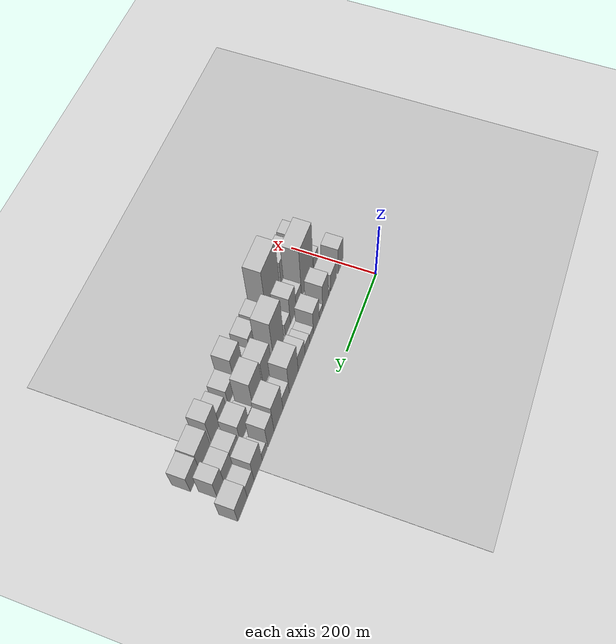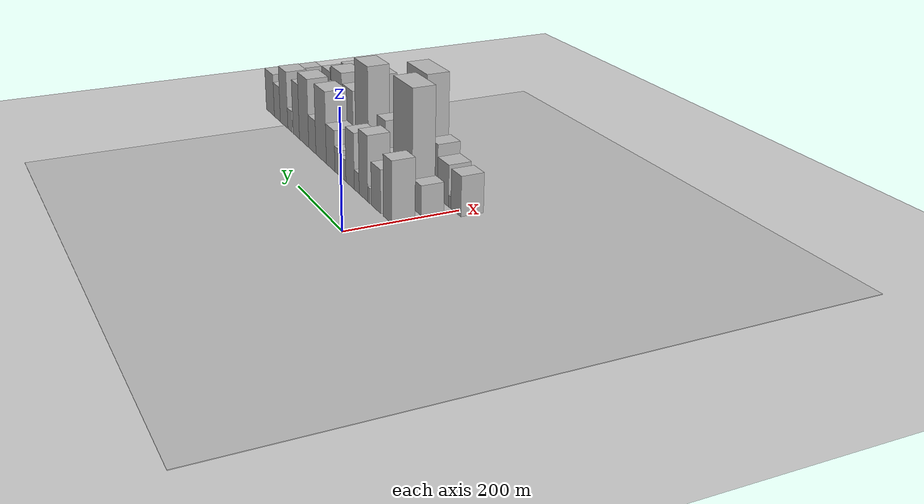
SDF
<sdf version="1.6">
 <world name="default">
  <include><name>ground_plane_1</name><uri>model://HANNAS_ground_plane</uri></include>
  <include>
   <name>ground_plane_2</name>
   <uri>model://HANNAS_ground_plane</uri>
   <pose>100 0 0  0 0 0</pose>
  </include>
  <model name="building_20">
   <static>1</static>
   <pose>100.0000 11.2909 0 0.000000 0.000000 0.000000</pose>
   <link name="link">
    <pose>0 0 52.50 0 0 0</pose>
    <collision name="collision"><geometry><box><size>40.0000 33.2602 105.0000</size></box></geometry></collision>
    <visual name="visual">
     <cast_shadows>0</cast_shadows>
     <geometry><box><size>40.0000 33.2602 105.0000</size></box></geometry>
     <material>
      <script>
       <uri>model://HANNAS_wall/materials/scripts</uri>
       <uri>model://HANNAS_wall/materials/textures</uri>
       <name>vrc/HANNAS_wall</name>
      </script>
     </material>
    </visual>
   </link>
  </model>
  <model name="building_21">
   <static>1</static>
   <pose>100.0000 57.2294 0 0.000000 0.000000 0.000000</pose>
   <link name="link">
    <pose>0 0 37.50 0 0 0</pose>
    <collision name="collision"><geometry><box><size>40.0000 38.6168 75.0000</size></box></geometry></collision>
    <visual name="visual">
     <cast_shadows>0</cast_shadows>
     <geometry><box><size>40.0000 38.6168 75.0000</size></box></geometry>
     <material>
      <script>
       <uri>model://HANNAS_wall/materials/scripts</uri>
       <uri>model://HANNAS_wall/materials/textures</uri>
       <name>vrc/HANNAS_wall</name>
      </script>
     </material>
    </visual>
   </link>
  </model>
  <model name="building_22">
   <static>1</static>
   <pose>100.0000 85.9400 0 0.000000 0.000000 0.000000</pose>
   <link name="link">
    <pose>0 0 13.50 0 0 0</pose>
    <collision name="collision"><geometry><box><size>40.0000 10.8043 27.0000</size></box></geometry></collision>
    <visual name="visual">
     <cast_shadows>0</cast_shadows>
     <geometry><box><size>40.0000 10.8043 27.0000</size></box></geometry>
     <material>
      <script>
       <uri>model://HANNAS_wall/materials/scripts</uri>
       <uri>model://HANNAS_wall/materials/textures</uri>
       <name>vrc/HANNAS_wall</name>
      </script>
     </material>
    </visual>
   </link>
  </model>
  <model name="building_23">
   <static>1</static>
   <pose>100.0000 109.5567 0 0.000000 0.000000 0.000000</pose>
   <link name="link">
    <pose>0 0 57.00 0 0 0</pose>
    <collision name="collision"><geometry><box><size>40.0000 36.4291 114.0000</size></box></geometry></collision>
    <visual name="visual">
     <cast_shadows>0</cast_shadows>
     <geometry><box><size>40.0000 36.4291 114.0000</size></box></geometry>
     <material>
      <script>
       <uri>model://HANNAS_wall/materials/scripts</uri>
       <uri>model://HANNAS_wall/materials/textures</uri>
       <name>vrc/HANNAS_wall</name>
      </script>
     </material>
    </visual>
   </link>
  </model>
  <model name="building_24">
   <static>1</static>
   <pose>100.0000 138.3412 0 0.000000 0.000000 0.000000</pose>
   <link name="link">
    <pose>0 0 18.00 0 0 0</pose>
    <collision name="collision"><geometry><box><size>40.0000 21.1399 36.0000</size></box></geometry></collision>
    <visual name="visual">
     <cast_shadows>0</cast_shadows>
     <geometry><box><size>40.0000 21.1399 36.0000</size></box></geometry>
     <material>
      <script>
       <uri>model://HANNAS_wall/materials/scripts</uri>
       <uri>model://HANNAS_wall/materials/textures</uri>
       <name>vrc/HANNAS_wall</name>
      </script>
     </material>
    </visual>
   </link>
  </model>
  <model name="building_25">
   <static>1</static>
   <pose>100.0000 167.5153 0 0.000000 0.000000 0.000000</pose>
   <link name="link">
    <pose>0 0 49.50 0 0 0</pose>
    <collision name="collision"><geometry><box><size>40.0000 37.2082 99.0000</size></box></geometry></collision>
    <visual name="visual">
     <cast_shadows>0</cast_shadows>
     <geometry><box><size>40.0000 37.2082 99.0000</size></box></geometry>
     <material>
      <script>
       <uri>model://HANNAS_wall/materials/scripts</uri>
       <uri>model://HANNAS_wall/materials/textures</uri>
       <name>vrc/HANNAS_wall</name>
      </script>
     </material>
    </visual>
   </link>
  </model>
  <model name="building_26">
   <static>1</static>
   <pose>100.0000 197.5822 0 0.000000 0.000000 0.000000</pose>
   <link name="link">
    <pose>0 0 19.50 0 0 0</pose>
    <collision name="collision"><geometry><box><size>40.0000 22.9257 39.0000</size></box></geometry></collision>
    <visual name="visual">
     <cast_shadows>0</cast_shadows>
     <geometry><box><size>40.0000 22.9257 39.0000</size></box></geometry>
     <material>
      <script>
       <uri>model://HANNAS_wall/materials/scripts</uri>
       <uri>model://HANNAS_wall/materials/textures</uri>
       <name>vrc/HANNAS_wall</name>
      </script>
     </material>
    </visual>
   </link>
  </model>
  <model name="building_27">
   <static>1</static>
   <pose>100.0000 223.0981 0 0.000000 0.000000 0.000000</pose>
   <link name="link">
    <pose>0 0 24.00 0 0 0</pose>
    <collision name="collision"><geometry><box><size>40.0000 28.1060 48.0000</size></box></geometry></collision>
    <visual name="visual">
     <cast_shadows>0</cast_shadows>
     <geometry><box><size>40.0000 28.1060 48.0000</size></box></geometry>
     <material>
      <script>
       <uri>model://HANNAS_wall/materials/scripts</uri>
       <uri>model://HANNAS_wall/materials/textures</uri>
       <name>vrc/HANNAS_wall</name>
      </script>
     </material>
    </visual>
   </link>
  </model>
  <model name="building_28">
   <static>1</static>
   <pose>100.0000 257.6946 0 0.000000 0.000000 0.000000</pose>
   <link name="link">
    <pose>0 0 37.50 0 0 0</pose>
    <collision name="collision"><geometry><box><size>40.0000 41.0869 75.0000</size></box></geometry></collision>
    <visual name="visual">
     <cast_shadows>0</cast_shadows>
     <geometry><box><size>40.0000 41.0869 75.0000</size></box></geometry>
     <material>
      <script>
       <uri>model://HANNAS_wall/materials/scripts</uri>
       <uri>model://HANNAS_wall/materials/textures</uri>
       <name>vrc/HANNAS_wall</name>
      </script>
     </material>
    </visual>
   </link>
  </model>
  <model name="building_29">
   <static>1</static>
   <pose>100.0000 304.1886 0 0.000000 0.000000 0.000000</pose>
   <link name="link">
    <pose>0 0 66.00 0 0 0</pose>
    <collision name="collision"><geometry><box><size>40.0000 51.9012 132.0000</size></box></geometry></collision>
    <visual name="visual">
     <cast_shadows>0</cast_shadows>
     <geometry><box><size>40.0000 51.9012 132.0000</size></box></geometry>
     <material>
      <script>
       <uri>model://HANNAS_wall/materials/scripts</uri>
       <uri>model://HANNAS_wall/materials/textures</uri>
       <name>vrc/HANNAS_wall</name>
      </script>
     </material>
    </visual>
   </link>
  </model>
  <model name="building_30">
   <static>1</static>
   <pose>100.0000 348.5221 0 0.000000 0.000000 0.000000</pose>
   <link name="link">
    <pose>0 0 31.50 0 0 0</pose>
    <collision name="collision"><geometry><box><size>40.0000 36.7659 63.0000</size></box></geometry></collision>
    <visual name="visual">
     <cast_shadows>0</cast_shadows>
     <geometry><box><size>40.0000 36.7659 63.0000</size></box></geometry>
     <material>
      <script>
       <uri>model://HANNAS_wall/materials/scripts</uri>
       <uri>model://HANNAS_wall/materials/textures</uri>
       <name>vrc/HANNAS_wall</name>
      </script>
     </material>
    </visual>
   </link>
  </model>
  <model name="building_31">
   <static>1</static>
   <pose>100.0000 391.8093 0 0.000000 0.000000 0.000000</pose>
   <link name="link">
    <pose>0 0 64.50 0 0 0</pose>
    <collision name="collision"><geometry><box><size>40.0000 49.8083 129.0000</size></box></geometry></collision>
    <visual name="visual">
     <cast_shadows>0</cast_shadows>
     <geometry><box><size>40.0000 49.8083 129.0000</size></box></geometry>
     <material>
      <script>
       <uri>model://HANNAS_wall/materials/scripts</uri>
       <uri>model://HANNAS_wall/materials/textures</uri>
       <name>vrc/HANNAS_wall</name>
      </script>
     </material>
    </visual>
   </link>
  </model>
  <model name="building_32">
   <static>1</static>
   <pose>100.0000 434.0224 0 0.000000 0.000000 0.000000</pose>
   <link name="link">
    <pose>0 0 52.50 0 0 0</pose>
    <collision name="collision"><geometry><box><size>40.0000 34.6179 105.0000</size></box></geometry></collision>
    <visual name="visual">
     <cast_shadows>0</cast_shadows>
     <geometry><box><size>40.0000 34.6179 105.0000</size></box></geometry>
     <material>
      <script>
       <uri>model://HANNAS_wall/materials/scripts</uri>
       <uri>model://HANNAS_wall/materials/textures</uri>
       <name>vrc/HANNAS_wall</name>
      </script>
     </material>
    </visual>
   </link>
  </model>
  <model name="building_33">
   <static>1</static>
   <pose>100.0000 468.6477 0 0.000000 0.000000 0.000000</pose>
   <link name="link">
    <pose>0 0 21.00 0 0 0</pose>
    <collision name="collision"><geometry><box><size>40.0000 24.6328 42.0000</size></box></geometry></collision>
    <visual name="visual">
     <cast_shadows>0</cast_shadows>
     <geometry><box><size>40.0000 24.6328 42.0000</size></box></geometry>
     <material>
      <script>
       <uri>model://HANNAS_wall/materials/scripts</uri>
       <uri>model://HANNAS_wall/materials/textures</uri>
       <name>vrc/HANNAS_wall</name>
      </script>
     </material>
    </visual>
   </link>
  </model>
  <model name="building_34">
   <static>1</static>
   <pose>100.0000 502.6056 0 0.000000 0.000000 0.000000</pose>
   <link name="link">
    <pose>0 0 55.50 0 0 0</pose>
    <collision name="collision"><geometry><box><size>40.0000 43.2830 111.0000</size></box></geometry></collision>
    <visual name="visual">
     <cast_shadows>0</cast_shadows>
     <geometry><box><size>40.0000 43.2830 111.0000</size></box></geometry>
     <material>
      <script>
       <uri>model://HANNAS_wall/materials/scripts</uri>
       <uri>model://HANNAS_wall/materials/textures</uri>
       <name>vrc/HANNAS_wall</name>
      </script>
     </material>
    </visual>
   </link>
  </model>
  <model name="building_35">
   <static>1</static>
   <pose>100.0000 542.0786 0 0.000000 0.000000 0.000000</pose>
   <link name="link">
    <pose>0 0 34.50 0 0 0</pose>
    <collision name="collision"><geometry><box><size>40.0000 35.6630 69.0000</size></box></geometry></collision>
    <visual name="visual">
     <cast_shadows>0</cast_shadows>
     <geometry><box><size>40.0000 35.6630 69.0000</size></box></geometry>
     <material>
      <script>
       <uri>model://HANNAS_wall/materials/scripts</uri>
       <uri>model://HANNAS_wall/materials/textures</uri>
       <name>vrc/HANNAS_wall</name>
      </script>
     </material>
    </visual>
   </link>
  </model>
  <model name="building_36">
   <static>1</static>
   <pose>100.0000 584.0762 0 0.000000 0.000000 0.000000</pose>
   <link name="link">
    <pose>0 0 42.00 0 0 0</pose>
    <collision name="collision"><geometry><box><size>40.0000 48.3321 84.0000</size></box></geometry></collision>
    <visual name="visual">
     <cast_shadows>0</cast_shadows>
     <geometry><box><size>40.0000 48.3321 84.0000</size></box></geometry>
     <material>
      <script>
       <uri>model://HANNAS_wall/materials/scripts</uri>
       <uri>model://HANNAS_wall/materials/textures</uri>
       <name>vrc/HANNAS_wall</name>
      </script>
     </material>
    </visual>
   </link>
  </model>
  <model name="building_53">
   <static>1</static>
   <pose>155.0000 19.9954 0 0.000000 0.000000 0.000000</pose>
   <link name="link">
    <pose>0 0 25.50 0 0 0</pose>
    <collision name="collision"><geometry><box><size>40.0000 30.4547 51.0000</size></box></geometry></collision>
    <visual name="visual">
     <cast_shadows>0</cast_shadows>
     <geometry><box><size>40.0000 30.4547 51.0000</size></box></geometry>
     <material>
      <script>
       <uri>model://HANNAS_wall/materials/scripts</uri>
       <uri>model://HANNAS_wall/materials/textures</uri>
       <name>vrc/HANNAS_wall</name>
      </script>
     </material>
    </visual>
   </link>
  </model>
  <model name="building_54">
   <static>1</static>
   <pose>155.0000 74.8193 0 0.000000 0.000000 0.000000</pose>
   <link name="link">
    <pose>0 0 100.50 0 0 0</pose>
    <collision name="collision"><geometry><box><size>40.0000 73.1931 201.0000</size></box></geometry></collision>
    <visual name="visual">
     <cast_shadows>0</cast_shadows>
     <geometry><box><size>40.0000 73.1931 201.0000</size></box></geometry>
     <material>
      <script>
       <uri>model://HANNAS_wall/materials/scripts</uri>
       <uri>model://HANNAS_wall/materials/textures</uri>
       <name>vrc/HANNAS_wall</name>
      </script>
     </material>
    </visual>
   </link>
  </model>
  <model name="building_55">
   <static>1</static>
   <pose>155.0000 127.9329 0 0.000000 0.000000 0.000000</pose>
   <link name="link">
    <pose>0 0 33.00 0 0 0</pose>
    <collision name="collision"><geometry><box><size>40.0000 33.0342 66.0000</size></box></geometry></collision>
    <visual name="visual">
     <cast_shadows>0</cast_shadows>
     <geometry><box><size>40.0000 33.0342 66.0000</size></box></geometry>
     <material>
      <script>
       <uri>model://HANNAS_wall/materials/scripts</uri>
       <uri>model://HANNAS_wall/materials/textures</uri>
       <name>vrc/HANNAS_wall</name>
      </script>
     </material>
    </visual>
   </link>
  </model>
  <model name="building_56">
   <static>1</static>
   <pose>155.0000 161.9922 0 0.000000 0.000000 0.000000</pose>
   <link name="link">
    <pose>0 0 57.00 0 0 0</pose>
    <collision name="collision"><geometry><box><size>40.0000 35.0843 114.0000</size></box></geometry></collision>
    <visual name="visual">
     <cast_shadows>0</cast_shadows>
     <geometry><box><size>40.0000 35.0843 114.0000</size></box></geometry>
     <material>
      <script>
       <uri>model://HANNAS_wall/materials/scripts</uri>
       <uri>model://HANNAS_wall/materials/textures</uri>
       <name>vrc/HANNAS_wall</name>
      </script>
     </material>
    </visual>
   </link>
  </model>
  <model name="building_57">
   <static>1</static>
   <pose>155.0000 195.0252 0 0.000000 0.000000 0.000000</pose>
   <link name="link">
    <pose>0 0 27.00 0 0 0</pose>
    <collision name="collision"><geometry><box><size>40.0000 30.9818 54.0000</size></box></geometry></collision>
    <visual name="visual">
     <cast_shadows>0</cast_shadows>
     <geometry><box><size>40.0000 30.9818 54.0000</size></box></geometry>
     <material>
      <script>
       <uri>model://HANNAS_wall/materials/scripts</uri>
       <uri>model://HANNAS_wall/materials/textures</uri>
       <name>vrc/HANNAS_wall</name>
      </script>
     </material>
    </visual>
   </link>
  </model>
  <model name="building_58">
   <static>1</static>
   <pose>155.0000 247.5119 0 0.000000 0.000000 0.000000</pose>
   <link name="link">
    <pose>0 0 93.00 0 0 0</pose>
    <collision name="collision"><geometry><box><size>40.0000 57.9915 186.0000</size></box></geometry></collision>
    <visual name="visual">
     <cast_shadows>0</cast_shadows>
     <geometry><box><size>40.0000 57.9915 186.0000</size></box></geometry>
     <material>
      <script>
       <uri>model://HANNAS_wall/materials/scripts</uri>
       <uri>model://HANNAS_wall/materials/textures</uri>
       <name>vrc/HANNAS_wall</name>
      </script>
     </material>
    </visual>
   </link>
  </model>
  <model name="building_59">
   <static>1</static>
   <pose>155.0000 282.2192 0 0.000000 0.000000 0.000000</pose>
   <link name="link">
    <pose>0 0 12.00 0 0 0</pose>
    <collision name="collision"><geometry><box><size>40.0000 11.4231 24.0000</size></box></geometry></collision>
    <visual name="visual">
     <cast_shadows>0</cast_shadows>
     <geometry><box><size>40.0000 11.4231 24.0000</size></box></geometry>
     <material>
      <script>
       <uri>model://HANNAS_wall/materials/scripts</uri>
       <uri>model://HANNAS_wall/materials/textures</uri>
       <name>vrc/HANNAS_wall</name>
      </script>
     </material>
    </visual>
   </link>
  </model>
  <model name="building_60">
   <static>1</static>
   <pose>155.0000 311.7160 0 0.000000 0.000000 0.000000</pose>
   <link name="link">
    <pose>0 0 61.50 0 0 0</pose>
    <collision name="collision"><geometry><box><size>40.0000 47.5704 123.0000</size></box></geometry></collision>
    <visual name="visual">
     <cast_shadows>0</cast_shadows>
     <geometry><box><size>40.0000 47.5704 123.0000</size></box></geometry>
     <material>
      <script>
       <uri>model://HANNAS_wall/materials/scripts</uri>
       <uri>model://HANNAS_wall/materials/textures</uri>
       <name>vrc/HANNAS_wall</name>
      </script>
     </material>
    </visual>
   </link>
  </model>
  <model name="building_61">
   <static>1</static>
   <pose>155.0000 364.9807 0 0.000000 0.000000 0.000000</pose>
   <link name="link">
    <pose>0 0 70.50 0 0 0</pose>
    <collision name="collision"><geometry><box><size>40.0000 50.9590 141.0000</size></box></geometry></collision>
    <visual name="visual">
     <cast_shadows>0</cast_shadows>
     <geometry><box><size>40.0000 50.9590 141.0000</size></box></geometry>
     <material>
      <script>
       <uri>model://HANNAS_wall/materials/scripts</uri>
       <uri>model://HANNAS_wall/materials/textures</uri>
       <name>vrc/HANNAS_wall</name>
      </script>
     </material>
    </visual>
   </link>
  </model>
  <model name="building_62">
   <static>1</static>
   <pose>155.0000 405.3605 0 0.000000 0.000000 0.000000</pose>
   <link name="link">
    <pose>0 0 19.50 0 0 0</pose>
    <collision name="collision"><geometry><box><size>40.0000 21.8006 39.0000</size></box></geometry></collision>
    <visual name="visual">
     <cast_shadows>0</cast_shadows>
     <geometry><box><size>40.0000 21.8006 39.0000</size></box></geometry>
     <material>
      <script>
       <uri>model://HANNAS_wall/materials/scripts</uri>
       <uri>model://HANNAS_wall/materials/textures</uri>
       <name>vrc/HANNAS_wall</name>
      </script>
     </material>
    </visual>
   </link>
  </model>
  <model name="building_63">
   <static>1</static>
   <pose>155.0000 438.8114 0 0.000000 0.000000 0.000000</pose>
   <link name="link">
    <pose>0 0 45.00 0 0 0</pose>
    <collision name="collision"><geometry><box><size>40.0000 45.1012 90.0000</size></box></geometry></collision>
    <visual name="visual">
     <cast_shadows>0</cast_shadows>
     <geometry><box><size>40.0000 45.1012 90.0000</size></box></geometry>
     <material>
      <script>
       <uri>model://HANNAS_wall/materials/scripts</uri>
       <uri>model://HANNAS_wall/materials/textures</uri>
       <name>vrc/HANNAS_wall</name>
      </script>
     </material>
    </visual>
   </link>
  </model>
  <model name="building_64">
   <static>1</static>
   <pose>155.0000 465.0333 0 0.000000 0.000000 0.000000</pose>
   <link name="link">
    <pose>0 0 9.00 0 0 0</pose>
    <collision name="collision"><geometry><box><size>40.0000 7.3426 18.0000</size></box></geometry></collision>
    <visual name="visual">
     <cast_shadows>0</cast_shadows>
     <geometry><box><size>40.0000 7.3426 18.0000</size></box></geometry>
     <material>
      <script>
       <uri>model://HANNAS_wall/materials/scripts</uri>
       <uri>model://HANNAS_wall/materials/textures</uri>
       <name>vrc/HANNAS_wall</name>
      </script>
     </material>
    </visual>
   </link>
  </model>
  <model name="building_65">
   <static>1</static>
   <pose>155.0000 487.4993 0 0.000000 0.000000 0.000000</pose>
   <link name="link">
    <pose>0 0 34.50 0 0 0</pose>
    <collision name="collision"><geometry><box><size>40.0000 37.5892 69.0000</size></box></geometry></collision>
    <visual name="visual">
     <cast_shadows>0</cast_shadows>
     <geometry><box><size>40.0000 37.5892 69.0000</size></box></geometry>
     <material>
      <script>
       <uri>model://HANNAS_wall/materials/scripts</uri>
       <uri>model://HANNAS_wall/materials/textures</uri>
       <name>vrc/HANNAS_wall</name>
      </script>
     </material>
    </visual>
   </link>
  </model>
  <model name="building_66">
   <static>1</static>
   <pose>155.0000 526.6850 0 0.000000 0.000000 0.000000</pose>
   <link name="link">
    <pose>0 0 34.50 0 0 0</pose>
    <collision name="collision"><geometry><box><size>40.0000 40.7823 69.0000</size></box></geometry></collision>
    <visual name="visual">
     <cast_shadows>0</cast_shadows>
     <geometry><box><size>40.0000 40.7823 69.0000</size></box></geometry>
     <material>
      <script>
       <uri>model://HANNAS_wall/materials/scripts</uri>
       <uri>model://HANNAS_wall/materials/textures</uri>
       <name>vrc/HANNAS_wall</name>
      </script>
     </material>
    </visual>
   </link>
  </model>
  <model name="building_67">
   <static>1</static>
   <pose>155.0000 563.6195 0 0.000000 0.000000 0.000000</pose>
   <link name="link">
    <pose>0 0 46.50 0 0 0</pose>
    <collision name="collision"><geometry><box><size>40.0000 33.0865 93.0000</size></box></geometry></collision>
    <visual name="visual">
     <cast_shadows>0</cast_shadows>
     <geometry><box><size>40.0000 33.0865 93.0000</size></box></geometry>
     <material>
      <script>
       <uri>model://HANNAS_wall/materials/scripts</uri>
       <uri>model://HANNAS_wall/materials/textures</uri>
       <name>vrc/HANNAS_wall</name>
      </script>
     </material>
    </visual>
   </link>
  </model>
  <model name="building_82">
   <static>1</static>
   <pose>210.0000 -7.5875 0 0.000000 0.000000 0.000000</pose>
   <link name="link">
    <pose>0 0 34.50 0 0 0</pose>
    <collision name="collision"><geometry><box><size>40.0000 35.5237 69.0000</size></box></geometry></collision>
    <visual name="visual">
     <cast_shadows>0</cast_shadows>
     <geometry><box><size>40.0000 35.5237 69.0000</size></box></geometry>
     <material>
      <script>
       <uri>model://HANNAS_wall/materials/scripts</uri>
       <uri>model://HANNAS_wall/materials/textures</uri>
       <name>vrc/HANNAS_wall</name>
      </script>
     </material>
    </visual>
   </link>
  </model>
  <model name="building_83">
   <static>1</static>
   <pose>210.0000 14.5669 0 0.000000 0.000000 0.000000</pose>
   <link name="link">
    <pose>0 0 10.50 0 0 0</pose>
    <collision name="collision"><geometry><box><size>40.0000 8.7852 21.0000</size></box></geometry></collision>
    <visual name="visual">
     <cast_shadows>0</cast_shadows>
     <geometry><box><size>40.0000 8.7852 21.0000</size></box></geometry>
     <material>
      <script>
       <uri>model://HANNAS_wall/materials/scripts</uri>
       <uri>model://HANNAS_wall/materials/textures</uri>
       <name>vrc/HANNAS_wall</name>
      </script>
     </material>
    </visual>
   </link>
  </model>
  <model name="building_84">
   <static>1</static>
   <pose>210.0000 39.2106 0 0.000000 0.000000 0.000000</pose>
   <link name="link">
    <pose>0 0 36.00 0 0 0</pose>
    <collision name="collision"><geometry><box><size>40.0000 40.5021 72.0000</size></box></geometry></collision>
    <visual name="visual">
     <cast_shadows>0</cast_shadows>
     <geometry><box><size>40.0000 40.5021 72.0000</size></box></geometry>
     <material>
      <script>
       <uri>model://HANNAS_wall/materials/scripts</uri>
       <uri>model://HANNAS_wall/materials/textures</uri>
       <name>vrc/HANNAS_wall</name>
      </script>
     </material>
    </visual>
   </link>
  </model>
  <model name="building_85">
   <static>1</static>
   <pose>210.0000 77.0712 0 0.000000 0.000000 0.000000</pose>
   <link name="link">
    <pose>0 0 46.50 0 0 0</pose>
    <collision name="collision"><geometry><box><size>40.0000 35.2192 93.0000</size></box></geometry></collision>
    <visual name="visual">
     <cast_shadows>0</cast_shadows>
     <geometry><box><size>40.0000 35.2192 93.0000</size></box></geometry>
     <material>
      <script>
       <uri>model://HANNAS_wall/materials/scripts</uri>
       <uri>model://HANNAS_wall/materials/textures</uri>
       <name>vrc/HANNAS_wall</name>
      </script>
     </material>
    </visual>
   </link>
  </model>
  <model name="building_86">
   <static>1</static>
   <pose>210.0000 98.3388 0 0.000000 0.000000 0.000000</pose>
   <link name="link">
    <pose>0 0 7.50 0 0 0</pose>
    <collision name="collision"><geometry><box><size>40.0000 7.3161 15.0000</size></box></geometry></collision>
    <visual name="visual">
     <cast_shadows>0</cast_shadows>
     <geometry><box><size>40.0000 7.3161 15.0000</size></box></geometry>
     <material>
      <script>
       <uri>model://HANNAS_wall/materials/scripts</uri>
       <uri>model://HANNAS_wall/materials/textures</uri>
       <name>vrc/HANNAS_wall</name>
      </script>
     </material>
    </visual>
   </link>
  </model>
  <model name="building_87">
   <static>1</static>
   <pose>210.0000 141.3294 0 0.000000 0.000000 0.000000</pose>
   <link name="link">
    <pose>0 0 99.00 0 0 0</pose>
    <collision name="collision"><geometry><box><size>40.0000 78.6651 198.0000</size></box></geometry></collision>
    <visual name="visual">
     <cast_shadows>0</cast_shadows>
     <geometry><box><size>40.0000 78.6651 198.0000</size></box></geometry>
     <material>
      <script>
       <uri>model://HANNAS_wall/materials/scripts</uri>
       <uri>model://HANNAS_wall/materials/textures</uri>
       <name>vrc/HANNAS_wall</name>
      </script>
     </material>
    </visual>
   </link>
  </model>
  <model name="building_88">
   <static>1</static>
   <pose>210.0000 207.1966 0 0.000000 0.000000 0.000000</pose>
   <link name="link">
    <pose>0 0 37.50 0 0 0</pose>
    <collision name="collision"><geometry><box><size>40.0000 39.0692 75.0000</size></box></geometry></collision>
    <visual name="visual">
     <cast_shadows>0</cast_shadows>
     <geometry><box><size>40.0000 39.0692 75.0000</size></box></geometry>
     <material>
      <script>
       <uri>model://HANNAS_wall/materials/scripts</uri>
       <uri>model://HANNAS_wall/materials/textures</uri>
       <name>vrc/HANNAS_wall</name>
      </script>
     </material>
    </visual>
   </link>
  </model>
  <model name="building_89">
   <static>1</static>
   <pose>210.0000 230.1415 0 0.000000 0.000000 0.000000</pose>
   <link name="link">
    <pose>0 0 7.50 0 0 0</pose>
    <collision name="collision"><geometry><box><size>40.0000 6.8207 15.0000</size></box></geometry></collision>
    <visual name="visual">
     <cast_shadows>0</cast_shadows>
     <geometry><box><size>40.0000 6.8207 15.0000</size></box></geometry>
     <material>
      <script>
       <uri>model://HANNAS_wall/materials/scripts</uri>
       <uri>model://HANNAS_wall/materials/textures</uri>
       <name>vrc/HANNAS_wall</name>
      </script>
     </material>
    </visual>
   </link>
  </model>
  <model name="building_90">
   <static>1</static>
   <pose>210.0000 254.7533 0 0.000000 0.000000 0.000000</pose>
   <link name="link">
    <pose>0 0 39.00 0 0 0</pose>
    <collision name="collision"><geometry><box><size>40.0000 42.4030 78.0000</size></box></geometry></collision>
    <visual name="visual">
     <cast_shadows>0</cast_shadows>
     <geometry><box><size>40.0000 42.4030 78.0000</size></box></geometry>
     <material>
      <script>
       <uri>model://HANNAS_wall/materials/scripts</uri>
       <uri>model://HANNAS_wall/materials/textures</uri>
       <name>vrc/HANNAS_wall</name>
      </script>
     </material>
    </visual>
   </link>
  </model>
  <model name="building_91">
   <static>1</static>
   <pose>210.0000 296.0244 0 0.000000 0.000000 0.000000</pose>
   <link name="link">
    <pose>0 0 24.00 0 0 0</pose>
    <collision name="collision"><geometry><box><size>40.0000 28.1392 48.0000</size></box></geometry></collision>
    <visual name="visual">
     <cast_shadows>0</cast_shadows>
     <geometry><box><size>40.0000 28.1392 48.0000</size></box></geometry>
     <material>
      <script>
       <uri>model://HANNAS_wall/materials/scripts</uri>
       <uri>model://HANNAS_wall/materials/textures</uri>
       <name>vrc/HANNAS_wall</name>
      </script>
     </material>
    </visual>
   </link>
  </model>
  <model name="building_92">
   <static>1</static>
   <pose>210.0000 332.4277 0 0.000000 0.000000 0.000000</pose>
   <link name="link">
    <pose>0 0 69.00 0 0 0</pose>
    <collision name="collision"><geometry><box><size>40.0000 44.6673 138.0000</size></box></geometry></collision>
    <visual name="visual">
     <cast_shadows>0</cast_shadows>
     <geometry><box><size>40.0000 44.6673 138.0000</size></box></geometry>
     <material>
      <script>
       <uri>model://HANNAS_wall/materials/scripts</uri>
       <uri>model://HANNAS_wall/materials/textures</uri>
       <name>vrc/HANNAS_wall</name>
      </script>
     </material>
    </visual>
   </link>
  </model>
  <model name="building_93">
   <static>1</static>
   <pose>210.0000 374.7470 0 0.000000 0.000000 0.000000</pose>
   <link name="link">
    <pose>0 0 34.50 0 0 0</pose>
    <collision name="collision"><geometry><box><size>40.0000 39.9712 69.0000</size></box></geometry></collision>
    <visual name="visual">
     <cast_shadows>0</cast_shadows>
     <geometry><box><size>40.0000 39.9712 69.0000</size></box></geometry>
     <material>
      <script>
       <uri>model://HANNAS_wall/materials/scripts</uri>
       <uri>model://HANNAS_wall/materials/textures</uri>
       <name>vrc/HANNAS_wall</name>
      </script>
     </material>
    </visual>
   </link>
  </model>
  <model name="building_94">
   <static>1</static>
   <pose>210.0000 422.7066 0 0.000000 0.000000 0.000000</pose>
   <link name="link">
    <pose>0 0 33.00 0 0 0</pose>
    <collision name="collision"><geometry><box><size>40.0000 37.9480 66.0000</size></box></geometry></collision>
    <visual name="visual">
     <cast_shadows>0</cast_shadows>
     <geometry><box><size>40.0000 37.9480 66.0000</size></box></geometry>
     <material>
      <script>
       <uri>model://HANNAS_wall/materials/scripts</uri>
       <uri>model://HANNAS_wall/materials/textures</uri>
       <name>vrc/HANNAS_wall</name>
      </script>
     </material>
    </visual>
   </link>
  </model>
  <model name="building_95">
   <static>1</static>
   <pose>210.0000 461.7203 0 0.000000 0.000000 0.000000</pose>
   <link name="link">
    <pose>0 0 58.50 0 0 0</pose>
    <collision name="collision"><geometry><box><size>40.0000 40.0795 117.0000</size></box></geometry></collision>
    <visual name="visual">
     <cast_shadows>0</cast_shadows>
     <geometry><box><size>40.0000 40.0795 117.0000</size></box></geometry>
     <material>
      <script>
       <uri>model://HANNAS_wall/materials/scripts</uri>
       <uri>model://HANNAS_wall/materials/textures</uri>
       <name>vrc/HANNAS_wall</name>
      </script>
     </material>
    </visual>
   </link>
  </model>
  <model name="building_96">
   <static>1</static>
   <pose>210.0000 513.7127 0 0.000000 0.000000 0.000000</pose>
   <link name="link">
    <pose>0 0 45.00 0 0 0</pose>
    <collision name="collision"><geometry><box><size>40.0000 53.9052 90.0000</size></box></geometry></collision>
    <visual name="visual">
     <cast_shadows>0</cast_shadows>
     <geometry><box><size>40.0000 53.9052 90.0000</size></box></geometry>
     <material>
      <script>
       <uri>model://HANNAS_wall/materials/scripts</uri>
       <uri>model://HANNAS_wall/materials/textures</uri>
       <name>vrc/HANNAS_wall</name>
      </script>
     </material>
    </visual>
   </link>
  </model>
  <model name="building_97">
   <static>1</static>
   <pose>210.0000 563.2633 0 0.000000 0.000000 0.000000</pose>
   <link name="link">
    <pose>0 0 40.50 0 0 0</pose>
    <collision name="collision"><geometry><box><size>40.0000 45.1959 81.0000</size></box></geometry></collision>
    <visual name="visual">
     <cast_shadows>0</cast_shadows>
     <geometry><box><size>40.0000 45.1959 81.0000</size></box></geometry>
     <material>
      <script>
       <uri>model://HANNAS_wall/materials/scripts</uri>
       <uri>model://HANNAS_wall/materials/textures</uri>
       <name>vrc/HANNAS_wall</name>
      </script>
     </material>
    </visual>
   </link>
  </model>
 </world>
</sdf>
